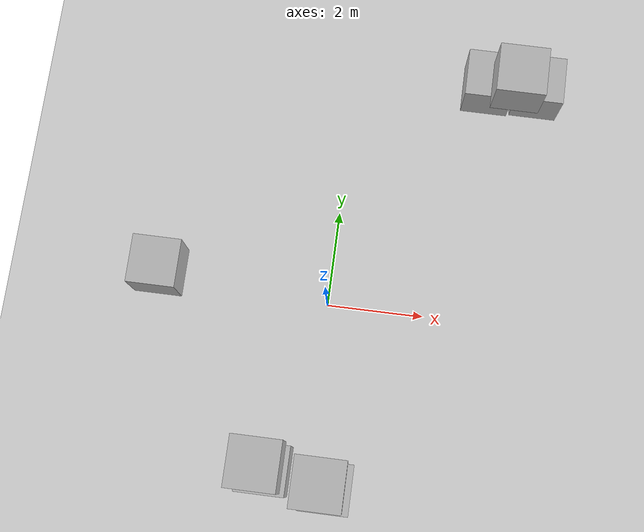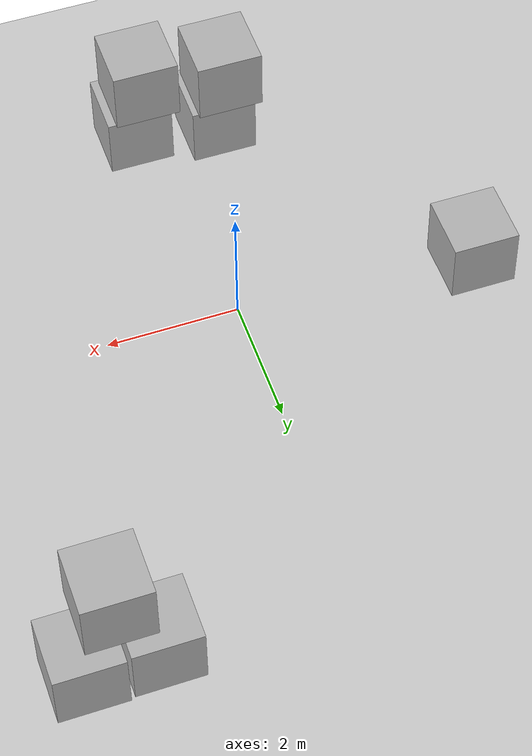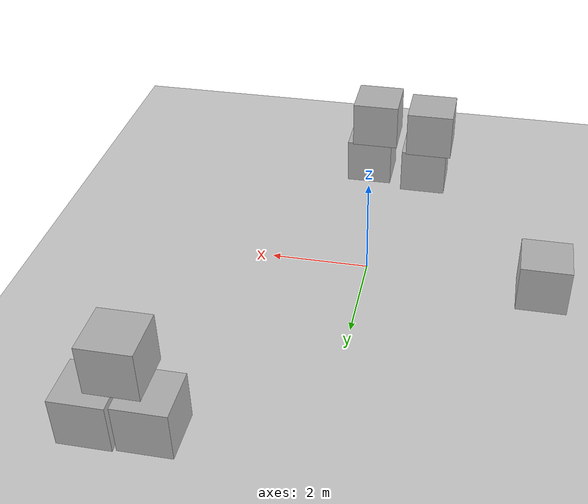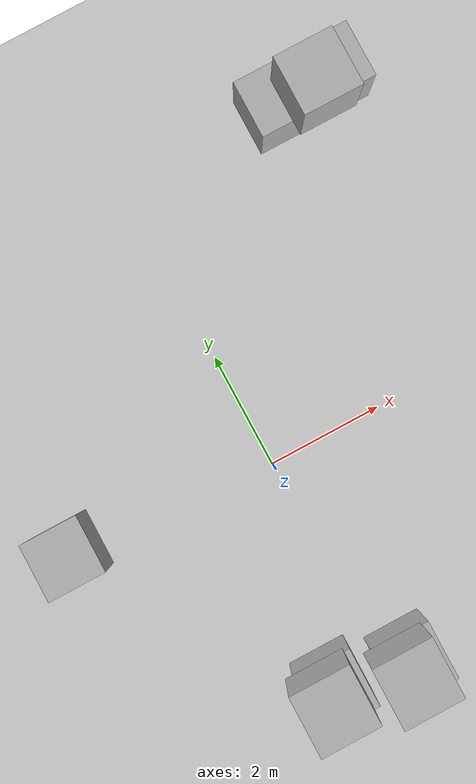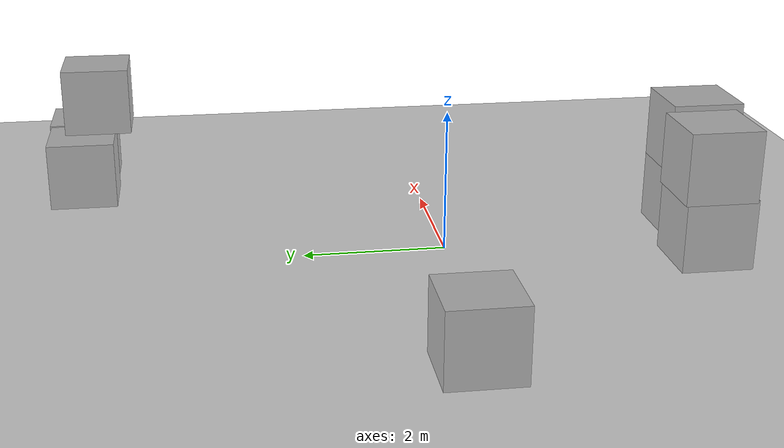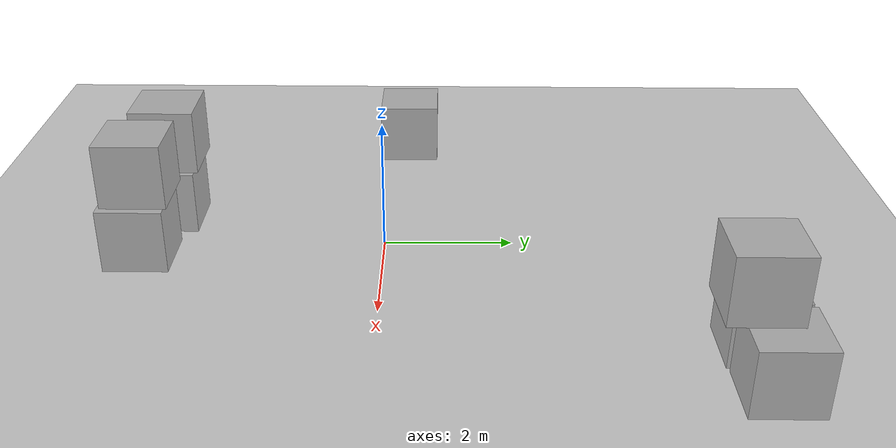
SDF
<?xml version="1.0"?>
<sdf version='1.10'>
  <world name='empty'>
    <physics name='1ms' type='ignored'>
      <max_step_size>0.001</max_step_size>
      <real_time_factor>1</real_time_factor>
      <real_time_update_rate>1000</real_time_update_rate>
    </physics>
    <plugin name='gz::sim::systems::Physics' filename='gz-sim-physics-system'/>
    <plugin name='gz::sim::systems::UserCommands' filename='gz-sim-user-commands-system'/>
    <plugin name='gz::sim::systems::SceneBroadcaster' filename='gz-sim-scene-broadcaster-system'/>
    <plugin name='gz::sim::systems::Contact' filename='gz-sim-contact-system'/>
    <plugin name='gz::sim::systems::Sensors' filename='gz-sim-sensors-system'/>
    <gravity>0 0 -9.8000000000000007</gravity>
    <magnetic_field>5.5644999999999998e-06 2.2875799999999999e-05 -4.2388400000000002e-05</magnetic_field>
    <atmosphere type='adiabatic'/>
    <scene>
      <ambient>0.400000006 0.400000006 0.400000006 1</ambient>
      <background>0.699999988 0.699999988 0.699999988 1</background>
      <shadows>true</shadows>
    </scene>
    <model name='ground_plane'>
      <static>true</static>
      <link name='link'>
        <collision name='collision'>
          <geometry>
            <plane>
              <normal>0 0 1</normal>
              <size>100 100</size>
            </plane>
          </geometry>
          <surface>
            <friction>
              <ode/>
            </friction>
            <bounce/>
            <contact/>
          </surface>
        </collision>
        <visual name='visual'>
          <geometry>
            <plane>
              <normal>0 0 1</normal>
              <size>100 100</size>
            </plane>
          </geometry>
          <material>
            <ambient>0.800000012 0.800000012 0.800000012 1</ambient>
            <diffuse>0.800000012 0.800000012 0.800000012 1</diffuse>
            <specular>0.800000012 0.800000012 0.800000012 1</specular>
          </material>
        </visual>
        <pose>0 0 0 0 0 0</pose>
        <inertial>
          <pose>0 0 0 0 0 0</pose>
          <mass>1</mass>
          <inertia>
            <ixx>1</ixx>
            <ixy>0</ixy>
            <ixz>0</ixz>
            <iyy>1</iyy>
            <iyz>0</iyz>
            <izz>1</izz>
          </inertia>
        </inertial>
        <enable_wind>false</enable_wind>
      </link>
      <pose>0 0 0 0 0 0</pose>
      <self_collide>false</self_collide>
    </model>
    <model name='box'>
      <pose>0.46925725062050727 -3.7243041421173944 0.49999998964967041 -2.9551128072241684e-07 -2.7636290367560684e-07 -2.0982993779842758e-08</pose>
      <link name='box_link'>
        <inertial>
          <inertia>
            <ixx>0.16666</ixx>
            <ixy>0</ixy>
            <ixz>0</ixz>
            <iyy>0.16666</iyy>
            <iyz>0</iyz>
            <izz>0.16666</izz>
          </inertia>
          <mass>1</mass>
          <pose>0 0 0 0 0 0</pose>
        </inertial>
        <collision name='box_collision'>
          <geometry>
            <box>
              <size>1 1 1</size>
            </box>
          </geometry>
          <surface>
            <friction>
              <ode/>
            </friction>
            <bounce/>
            <contact/>
          </surface>
        </collision>
        <visual name='box_visual'>
          <geometry>
            <box>
              <size>1 1 1</size>
            </box>
          </geometry>
          <material>
            <ambient>0.300000012 0.300000012 0.300000012 1</ambient>
            <diffuse>0.699999988 0.699999988 0.699999988 1</diffuse>
            <specular>1 1 1 1</specular>
          </material>
        </visual>
        <pose>0 0 0 0 0 0</pose>
        <enable_wind>false</enable_wind>
      </link>
      <static>false</static>
      <self_collide>false</self_collide>
    </model>
    <model name='box_0'>
      <pose>0.34341511709518591 -3.6765694915283236 1.4999990804793202 -2.9956277654707727e-07 -3.0754647705998836e-07 -1.518263506643289e-08</pose>
      <link name='box_link'>
        <inertial>
          <inertia>
            <ixx>0.16666</ixx>
            <ixy>0</ixy>
            <ixz>0</ixz>
            <iyy>0.16666</iyy>
            <iyz>0</iyz>
            <izz>0.16666</izz>
          </inertia>
          <mass>1</mass>
          <pose>0 0 0 0 0 0</pose>
        </inertial>
        <collision name='box_collision'>
          <geometry>
            <box>
              <size>1 1 1</size>
            </box>
          </geometry>
          <surface>
            <friction>
              <ode/>
            </friction>
            <bounce/>
            <contact/>
          </surface>
        </collision>
        <visual name='box_visual'>
          <geometry>
            <box>
              <size>1 1 1</size>
            </box>
          </geometry>
          <material>
            <ambient>0.300000012 0.300000012 0.300000012 1</ambient>
            <diffuse>0.699999988 0.699999988 0.699999988 1</diffuse>
            <specular>1 1 1 1</specular>
          </material>
        </visual>
        <pose>0 0 0 0 0 0</pose>
        <enable_wind>false</enable_wind>
      </link>
      <static>false</static>
      <self_collide>false</self_collide>
    </model>
    <model name='box_1'>
      <pose>3.8670279732946931 5.1916784519988006 0.49999998998844991 3.2456576797886857e-10 1.9196466533168444e-08 1.5410216198653108e-07</pose>
      <link name='box_link'>
        <inertial>
          <inertia>
            <ixx>0.16666</ixx>
            <ixy>0</ixy>
            <ixz>0</ixz>
            <iyy>0.16666</iyy>
            <iyz>0</iyz>
            <izz>0.16666</izz>
          </inertia>
          <mass>1</mass>
          <pose>0 0 0 0 0 0</pose>
        </inertial>
        <collision name='box_collision'>
          <geometry>
            <box>
              <size>1 1 1</size>
            </box>
          </geometry>
          <surface>
            <friction>
              <ode/>
            </friction>
            <bounce/>
            <contact/>
          </surface>
        </collision>
        <visual name='box_visual'>
          <geometry>
            <box>
              <size>1 1 1</size>
            </box>
          </geometry>
          <material>
            <ambient>0.300000012 0.300000012 0.300000012 1</ambient>
            <diffuse>0.699999988 0.699999988 0.699999988 1</diffuse>
            <specular>1 1 1 1</specular>
          </material>
        </visual>
        <pose>0 0 0 0 0 0</pose>
        <enable_wind>false</enable_wind>
      </link>
      <static>false</static>
      <self_collide>false</self_collide>
    </model>
    <model name='box_2'>
      <pose>2.8079786121824553 5.1600251196358329 0.49999999000528361 2.9772770297839238e-10 -1.9222580043074198e-08 -1.3065724396788757e-07</pose>
      <link name='box_link'>
        <inertial>
          <inertia>
            <ixx>0.16666</ixx>
            <ixy>0</ixy>
            <ixz>0</ixz>
            <iyy>0.16666</iyy>
            <iyz>0</iyz>
            <izz>0.16666</izz>
          </inertia>
          <mass>1</mass>
          <pose>0 0 0 0 0 0</pose>
        </inertial>
        <collision name='box_collision'>
          <geometry>
            <box>
              <size>1 1 1</size>
            </box>
          </geometry>
          <surface>
            <friction>
              <ode/>
            </friction>
            <bounce/>
            <contact/>
          </surface>
        </collision>
        <visual name='box_visual'>
          <geometry>
            <box>
              <size>1 1 1</size>
            </box>
          </geometry>
          <material>
            <ambient>0.300000012 0.300000012 0.300000012 1</ambient>
            <diffuse>0.699999988 0.699999988 0.699999988 1</diffuse>
            <specular>1 1 1 1</specular>
          </material>
        </visual>
        <pose>0 0 0 0 0 0</pose>
        <enable_wind>false</enable_wind>
      </link>
      <static>false</static>
      <self_collide>false</self_collide>
    </model>
    <model name='box_3'>
      <pose>3.3500699863217407 4.9112705257322755 1.4999997693239662 -8.5218090058653372e-07 -2.5875903393930601e-08 -6.3083517212066005e-10</pose>
      <link name='box_link'>
        <inertial>
          <inertia>
            <ixx>0.16666</ixx>
            <ixy>0</ixy>
            <ixz>0</ixz>
            <iyy>0.16666</iyy>
            <iyz>0</iyz>
            <izz>0.16666</izz>
          </inertia>
          <mass>1</mass>
          <pose>0 0 0 0 0 0</pose>
        </inertial>
        <collision name='box_collision'>
          <geometry>
            <box>
              <size>1 1 1</size>
            </box>
          </geometry>
          <surface>
            <friction>
              <ode/>
            </friction>
            <bounce/>
            <contact/>
          </surface>
        </collision>
        <visual name='box_visual'>
          <geometry>
            <box>
              <size>1 1 1</size>
            </box>
          </geometry>
          <material>
            <ambient>0.300000012 0.300000012 0.300000012 1</ambient>
            <diffuse>0.699999988 0.699999988 0.699999988 1</diffuse>
            <specular>1 1 1 1</specular>
          </material>
        </visual>
        <pose>0 0 0 0 0 0</pose>
        <enable_wind>false</enable_wind>
      </link>
      <static>false</static>
      <self_collide>false</self_collide>
    </model>
    <model name='box_4'>
      <pose>-3.5799712460090691 0.30120973461562783 0.49999999980497606 4.510122445939706e-21 -4.811254041875492e-21 7.5000850150618032e-22</pose>
      <link name='box_link'>
        <inertial>
          <inertia>
            <ixx>0.16666</ixx>
            <ixy>0</ixy>
            <ixz>0</ixz>
            <iyy>0.16666</iyy>
            <iyz>0</iyz>
            <izz>0.16666</izz>
          </inertia>
          <mass>1</mass>
          <pose>0 0 0 0 0 0</pose>
        </inertial>
        <collision name='box_collision'>
          <geometry>
            <box>
              <size>1 1 1</size>
            </box>
          </geometry>
          <surface>
            <friction>
              <ode/>
            </friction>
            <bounce/>
            <contact/>
          </surface>
        </collision>
        <visual name='box_visual'>
          <geometry>
            <box>
              <size>1 1 1</size>
            </box>
          </geometry>
          <material>
            <ambient>0.300000012 0.300000012 0.300000012 1</ambient>
            <diffuse>0.699999988 0.699999988 0.699999988 1</diffuse>
            <specular>1 1 1 1</specular>
          </material>
        </visual>
        <pose>0 0 0 0 0 0</pose>
        <enable_wind>false</enable_wind>
      </link>
      <static>false</static>
      <self_collide>false</self_collide>
    </model>
    <model name='box_5'>
      <pose>-0.80722697507461361 -3.518014833576296 0.49999999019985314 6.8408183935365601e-13 1.9595636045265423e-08 -2.1561830640115937e-08</pose>
      <link name='box_link'>
        <inertial>
          <inertia>
            <ixx>0.16666</ixx>
            <ixy>0</ixy>
            <ixz>0</ixz>
            <iyy>0.16666</iyy>
            <iyz>0</iyz>
            <izz>0.16666</izz>
          </inertia>
          <mass>1</mass>
          <pose>0 0 0 0 0 0</pose>
        </inertial>
        <collision name='box_collision'>
          <geometry>
            <box>
              <size>1 1 1</size>
            </box>
          </geometry>
          <surface>
            <friction>
              <ode/>
            </friction>
            <bounce/>
            <contact/>
          </surface>
        </collision>
        <visual name='box_visual'>
          <geometry>
            <box>
              <size>1 1 1</size>
            </box>
          </geometry>
          <material>
            <ambient>0.300000012 0.300000012 0.300000012 1</ambient>
            <diffuse>0.699999988 0.699999988 0.699999988 1</diffuse>
            <specular>1 1 1 1</specular>
          </material>
        </visual>
        <pose>0 0 0 0 0 0</pose>
        <enable_wind>false</enable_wind>
      </link>
      <static>false</static>
      <self_collide>false</self_collide>
    </model>
    <model name='box_6'>
      <pose>-0.9025740062904164 -3.4534699861746314 1.4999991054788988 -5.9641657179400771e-09 -9.3188014082688566e-09 -1.19784575118584e-08</pose>
      <link name='box_link'>
        <inertial>
          <inertia>
            <ixx>0.16666</ixx>
            <ixy>0</ixy>
            <ixz>0</ixz>
            <iyy>0.16666</iyy>
            <iyz>0</iyz>
            <izz>0.16666</izz>
          </inertia>
          <mass>1</mass>
          <pose>0 0 0 0 0 0</pose>
        </inertial>
        <collision name='box_collision'>
          <geometry>
            <box>
              <size>1 1 1</size>
            </box>
          </geometry>
          <surface>
            <friction>
              <ode/>
            </friction>
            <bounce/>
            <contact/>
          </surface>
        </collision>
        <visual name='box_visual'>
          <geometry>
            <box>
              <size>1 1 1</size>
            </box>
          </geometry>
          <material>
            <ambient>0.300000012 0.300000012 0.300000012 1</ambient>
            <diffuse>0.699999988 0.699999988 0.699999988 1</diffuse>
            <specular>1 1 1 1</specular>
          </material>
        </visual>
        <pose>0 0 0 0 0 0</pose>
        <enable_wind>false</enable_wind>
      </link>
      <static>false</static>
      <self_collide>false</self_collide>
    </model>
    <light name='sun' type='directional'>
      <pose>0 0 10 0 0 0</pose>
      <cast_shadows>true</cast_shadows>
      <intensity>1</intensity>
      <direction>-0.5 0.10000000000000001 -0.90000000000000002</direction>
      <diffuse>0.800000012 0.800000012 0.800000012 1</diffuse>
      <specular>0.200000003 0.200000003 0.200000003 1</specular>
      <attenuation>
        <range>1000</range>
        <linear>0.01</linear>
        <constant>0.90000000000000002</constant>
        <quadratic>0.001</quadratic>
      </attenuation>
      <spot>
        <inner_angle>0</inner_angle>
        <outer_angle>0</outer_angle>
        <falloff>0</falloff>
      </spot>
    </light>
  </world>
</sdf>
